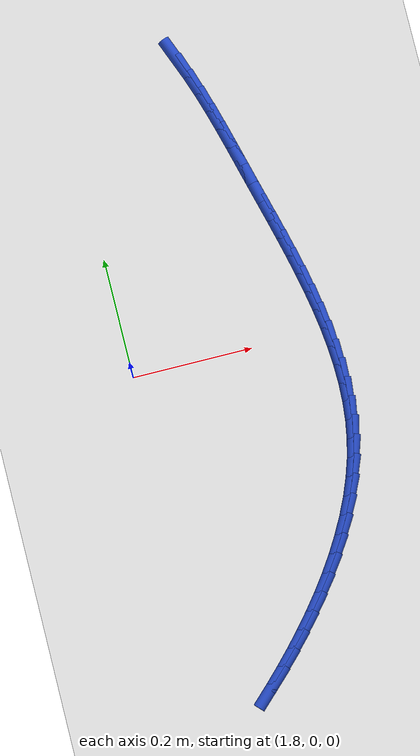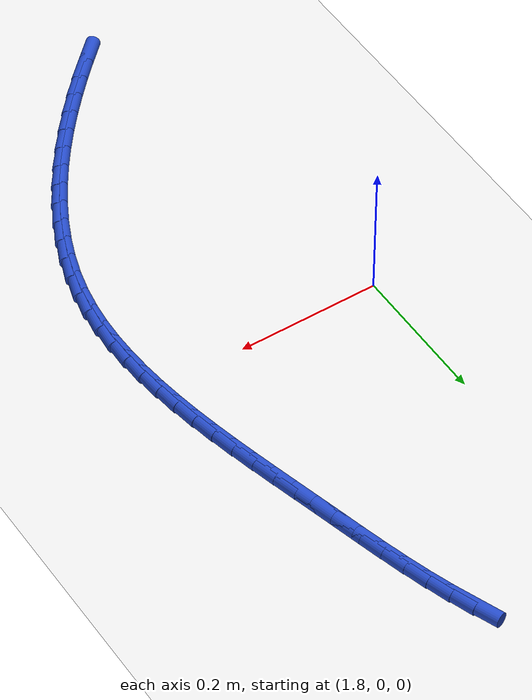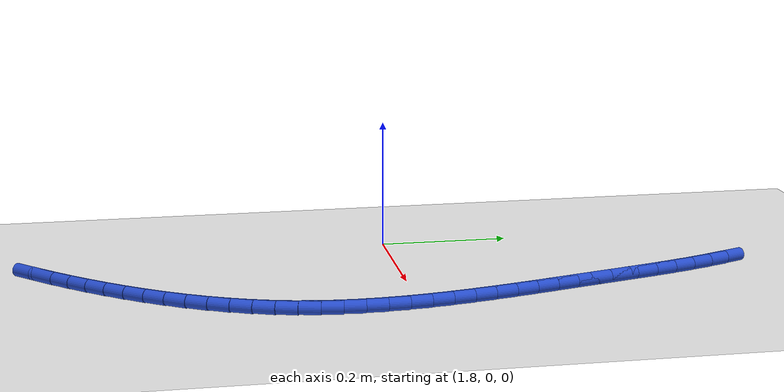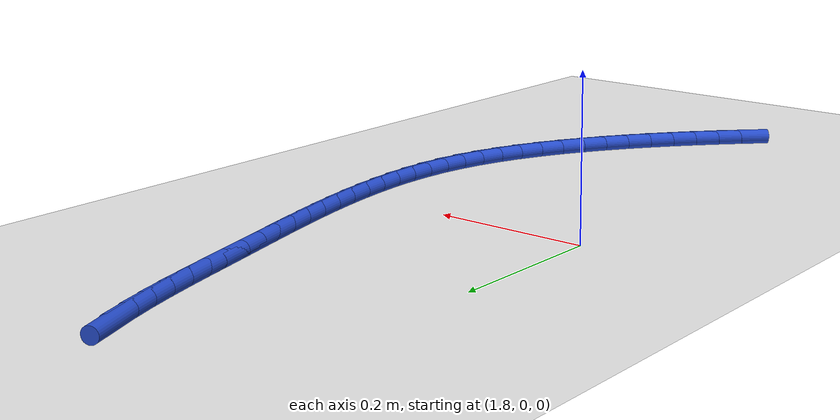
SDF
<sdf version="1.6">
 <world name="default">
  <model name="ground_plane">
   <static>1</static>
   <link name="link">
    <collision name="collision">
     <geometry><plane><normal>0 0 1</normal><size>100 100</size></plane></geometry>
     <surface><friction><ode><mu>100</mu><mu2>50</mu2></ode></friction></surface>
    </collision>
    <visual name="visual">
     <cast_shadows>0</cast_shadows>
     <geometry><plane><normal>0 0 1</normal><size>100 100</size></plane></geometry>
     <material>
      <script><uri>file://media/materials/scripts/gazebo.material</uri><name>Gazebo/WhiteGlow</name></script>
     </material>
    </visual>
   </link>
  </model>
  <model name="line">
   <link name="link_87">
    <pose>1.9966402707953828 0.4942645451980342 0.01 0 1.57 -1.1951826730131134</pose>
    <collision name="collision">
     <geometry><cylinder><radius>0.01</radius><length>0.08</length></cylinder></geometry>
    </collision>
    <visual name="visual">
     <material>
      <script><name>Gazebo/Blue</name><uri>file://media/materials/scripts/gazebo.material</uri></script>
     </material>
     <geometry><cylinder><radius>0.01</radius><length>0.08</length></cylinder></geometry>
    </visual>
   </link>
   <link name="link_88">
    <pose>2.0086938656534725 0.4636976918020511 0.01 0 1.57 -1.2339559785877878</pose>
    <collision name="collision">
     <geometry><cylinder><radius>0.01</radius><length>0.08</length></cylinder></geometry>
    </collision>
    <visual name="visual">
     <material>
      <script><name>Gazebo/Blue</name><uri>file://media/materials/scripts/gazebo.material</uri></script>
     </material>
     <geometry><cylinder><radius>0.01</radius><length>0.08</length></cylinder></geometry>
    </visual>
   </link>
   <link name="link_89">
    <pose>2.0196806717491325 0.432323473982702 0.01 0 1.57 -1.2646611327025226</pose>
    <collision name="collision">
     <geometry><cylinder><radius>0.01</radius><length>0.08</length></cylinder></geometry>
    </collision>
    <visual name="visual">
     <material>
      <script><name>Gazebo/Blue</name><uri>file://media/materials/scripts/gazebo.material</uri></script>
     </material>
     <geometry><cylinder><radius>0.01</radius><length>0.08</length></cylinder></geometry>
    </visual>
   </link>
   <link name="link_90">
    <pose>2.02980808795135 0.40028192631894227 0.01 0 1.57 -1.2876764033130716</pose>
    <collision name="collision">
     <geometry><cylinder><radius>0.01</radius><length>0.08</length></cylinder></geometry>
    </collision>
    <visual name="visual">
     <material>
      <script><name>Gazebo/Blue</name><uri>file://media/materials/scripts/gazebo.material</uri></script>
     </material>
     <geometry><cylinder><radius>0.01</radius><length>0.08</length></cylinder></geometry>
    </visual>
   </link>
   <link name="link_91">
    <pose>2.0392835131291114 0.36771308338972736 0.01 0 1.57 -1.3033357547484918</pose>
    <collision name="collision">
     <geometry><cylinder><radius>0.01</radius><length>0.08</length></cylinder></geometry>
    </collision>
    <visual name="visual">
     <material>
      <script><name>Gazebo/Blue</name><uri>file://media/materials/scripts/gazebo.material</uri></script>
     </material>
     <geometry><cylinder><radius>0.01</radius><length>0.08</length></cylinder></geometry>
    </visual>
   </link>
   <link name="link_92">
    <pose>2.0483143461514035 0.3347569797740123 0.01 0 1.57 -1.311898136501108</pose>
    <collision name="collision">
     <geometry><cylinder><radius>0.01</radius><length>0.08</length></cylinder></geometry>
    </collision>
    <visual name="visual">
     <material>
      <script><name>Gazebo/Blue</name><uri>file://media/materials/scripts/gazebo.material</uri></script>
     </material>
     <geometry><cylinder><radius>0.01</radius><length>0.08</length></cylinder></geometry>
    </visual>
   </link>
   <link name="link_93">
    <pose>2.0571079858872143 0.30155365005075374 0.01 0 1.57 -1.3135318711013881</pose>
    <collision name="collision">
     <geometry><cylinder><radius>0.01</radius><length>0.08</length></cylinder></geometry>
    </collision>
    <visual name="visual">
     <material>
      <script><name>Gazebo/Blue</name><uri>file://media/materials/scripts/gazebo.material</uri></script>
     </material>
     <geometry><cylinder><radius>0.01</radius><length>0.08</length></cylinder></geometry>
    </visual>
   </link>
   <link name="link_94">
    <pose>2.0658718040887782 0.2682431205071831 0.01 0 1.57 -1.3107129124620442</pose>
    <collision name="collision">
     <geometry><cylinder><radius>0.01</radius><length>0.08</length></cylinder></geometry>
    </collision>
    <visual name="visual">
     <material>
      <script><name>Gazebo/Blue</name><uri>file://media/materials/scripts/gazebo.material</uri></script>
     </material>
     <geometry><cylinder><radius>0.01</radius><length>0.08</length></cylinder></geometry>
    </visual>
   </link>
   <link name="link_95">
    <pose>2.0747338193554885 0.23494115293115522 0.01 0 1.57 -1.3111346978179512</pose>
    <collision name="collision">
     <geometry><cylinder><radius>0.01</radius><length>0.08</length></cylinder></geometry>
    </collision>
    <visual name="visual">
     <material>
      <script><name>Gazebo/Blue</name><uri>file://media/materials/scripts/gazebo.material</uri></script>
     </material>
     <geometry><cylinder><radius>0.01</radius><length>0.08</length></cylinder></geometry>
    </visual>
   </link>
   <link name="link_96">
    <pose>2.083568374416682 0.20168594044727262 0.01 0 1.57 -1.316355917496878</pose>
    <collision name="collision">
     <geometry><cylinder><radius>0.01</radius><length>0.08</length></cylinder></geometry>
    </collision>
    <visual name="visual">
     <material>
      <script><name>Gazebo/Blue</name><uri>file://media/materials/scripts/gazebo.material</uri></script>
     </material>
     <geometry><cylinder><radius>0.01</radius><length>0.08</length></cylinder></geometry>
    </visual>
   </link>
   <link name="link_97">
    <pose>2.092199228043658 0.16850020868610133 0.01 0 1.57 -1.326456821224471</pose>
    <collision name="collision">
     <geometry><cylinder><radius>0.01</radius><length>0.08</length></cylinder></geometry>
    </collision>
    <visual name="visual">
     <material>
      <script><name>Gazebo/Blue</name><uri>file://media/materials/scripts/gazebo.material</uri></script>
     </material>
     <geometry><cylinder><radius>0.01</radius><length>0.08</length></cylinder></geometry>
    </visual>
   </link>
   <link name="link_98">
    <pose>2.1004501390077155 0.13540668327820746 0.01 0 1.57 -1.3415723897104859</pose>
    <collision name="collision">
     <geometry><cylinder><radius>0.01</radius><length>0.08</length></cylinder></geometry>
    </collision>
    <visual name="visual">
     <material>
      <script><name>Gazebo/Blue</name><uri>file://media/materials/scripts/gazebo.material</uri></script>
     </material>
     <geometry><cylinder><radius>0.01</radius><length>0.08</length></cylinder></geometry>
    </visual>
   </link>
   <link name="link_99">
    <pose>2.108144866080155 0.10242808985415798 0.01 0 1.57 -1.3618886932570822</pose>
    <collision name="collision">
     <geometry><cylinder><radius>0.01</radius><length>0.08</length></cylinder></geometry>
    </collision>
    <visual name="visual">
     <material>
      <script><name>Gazebo/Blue</name><uri>file://media/materials/scripts/gazebo.material</uri></script>
     </material>
     <geometry><cylinder><radius>0.01</radius><length>0.08</length></cylinder></geometry>
    </visual>
   </link>
   <link name="link_100">
    <pose>2.115107168032274 0.06958715404451901 0.01 0 1.57 -1.387635765595845</pose>
    <collision name="collision">
     <geometry><cylinder><radius>0.01</radius><length>0.08</length></cylinder></geometry>
    </collision>
    <visual name="visual">
     <material>
      <script><name>Gazebo/Blue</name><uri>file://media/materials/scripts/gazebo.material</uri></script>
     </material>
     <geometry><cylinder><radius>0.01</radius><length>0.08</length></cylinder></geometry>
    </visual>
   </link>
   <link name="link_101">
    <pose>2.1211608036353735 0.03690660147985661 0.01 0 1.57 -1.4190753494903507</pose>
    <collision name="collision">
     <geometry><cylinder><radius>0.01</radius><length>0.08</length></cylinder></geometry>
    </collision>
    <visual name="visual">
     <material>
      <script><name>Gazebo/Blue</name><uri>file://media/materials/scripts/gazebo.material</uri></script>
     </material>
     <geometry><cylinder><radius>0.01</radius><length>0.08</length></cylinder></geometry>
    </visual>
   </link>
   <link name="link_102">
    <pose>2.1261295316607525 0.004409157790737927 0.01 0 1.57 -1.456481335620069</pose>
    <collision name="collision">
     <geometry><cylinder><radius>0.01</radius><length>0.08</length></cylinder></geometry>
    </collision>
    <visual name="visual">
     <material>
      <script><name>Gazebo/Blue</name><uri>file://media/materials/scripts/gazebo.material</uri></script>
     </material>
     <geometry><cylinder><radius>0.01</radius><length>0.08</length></cylinder></geometry>
    </visual>
   </link>
   <link name="link_103">
    <pose>2.1298371108797096 -0.02788245139227104 0.01 0 1.57 -1.5001103817904595</pose>
    <collision name="collision">
     <geometry><cylinder><radius>0.01</radius><length>0.08</length></cylinder></geometry>
    </collision>
    <visual name="visual">
     <material>
      <script><name>Gazebo/Blue</name><uri>file://media/materials/scripts/gazebo.material</uri></script>
     </material>
     <geometry><cylinder><radius>0.01</radius><length>0.08</length></cylinder></geometry>
    </visual>
   </link>
   <link name="link_104">
    <pose>2.132107300063546 -0.05994550043860391 0.01 0 1.57 -1.5501604156315285</pose>
    <collision name="collision">
     <geometry><cylinder><radius>0.01</radius><length>0.08</length></cylinder></geometry>
    </collision>
    <visual name="visual">
     <material>
      <script><name>Gazebo/Blue</name><uri>file://media/materials/scripts/gazebo.material</uri></script>
     </material>
     <geometry><cylinder><radius>0.01</radius><length>0.08</length></cylinder></geometry>
    </visual>
   </link>
   <link name="link_105">
    <pose>2.132763857983559 -0.0917572637176942 0.01 0 1.57 1.5348766098735038</pose>
    <collision name="collision">
     <geometry><cylinder><radius>0.01</radius><length>0.08</length></cylinder></geometry>
    </collision>
    <visual name="visual">
     <material>
      <script><name>Gazebo/Blue</name><uri>file://media/materials/scripts/gazebo.material</uri></script>
     </material>
     <geometry><cylinder><radius>0.01</radius><length>0.08</length></cylinder></geometry>
    </visual>
   </link>
   <link name="link_106">
    <pose>2.13163054341105 -0.12329501559897629 0.01 0 1.57 1.4719096850045177</pose>
    <collision name="collision">
     <geometry><cylinder><radius>0.01</radius><length>0.08</length></cylinder></geometry>
    </collision>
    <visual name="visual">
     <material>
      <script><name>Gazebo/Blue</name><uri>file://media/materials/scripts/gazebo.material</uri></script>
     </material>
     <geometry><cylinder><radius>0.01</radius><length>0.08</length></cylinder></geometry>
    </visual>
   </link>
   <link name="link_107">
    <pose>2.1285311151173163 -0.15453603045188236 0.01 0 1.57 1.402873927779133</pose>
    <collision name="collision">
     <geometry><cylinder><radius>0.01</radius><length>0.08</length></cylinder></geometry>
    </collision>
    <visual name="visual">
     <material>
      <script><name>Gazebo/Blue</name><uri>file://media/materials/scripts/gazebo.material</uri></script>
     </material>
     <geometry><cylinder><radius>0.01</radius><length>0.08</length></cylinder></geometry>
    </visual>
   </link>
   <link name="link_108">
    <pose>2.1232893318736585 -0.1854575826458466 0.01 0 1.57 1.3291554472602143</pose>
    <collision name="collision">
     <geometry><cylinder><radius>0.01</radius><length>0.08</length></cylinder></geometry>
    </collision>
    <visual name="visual">
     <material>
      <script><name>Gazebo/Blue</name><uri>file://media/materials/scripts/gazebo.material</uri></script>
     </material>
     <geometry><cylinder><radius>0.01</radius><length>0.08</length></cylinder></geometry>
    </visual>
   </link>
   <link name="link_109">
    <pose>2.115753061996013 -0.2160360757744518 0.01 0 1.57 1.257839679946424</pose>
    <collision name="collision">
     <geometry><cylinder><radius>0.01</radius><length>0.08</length></cylinder></geometry>
    </collision>
    <visual name="visual">
     <material>
      <script><name>Gazebo/Blue</name><uri>file://media/materials/scripts/gazebo.material</uri></script>
     </material>
     <geometry><cylinder><radius>0.01</radius><length>0.08</length></cylinder></geometry>
    </visual>
   </link>
   <link name="link_110">
    <pose>2.105979237724318 -0.246240362570447 0.01 0 1.57 1.1923428005922345</pose>
    <collision name="collision">
     <geometry><cylinder><radius>0.01</radius><length>0.08</length></cylinder></geometry>
    </collision>
    <visual name="visual">
     <material>
      <script><name>Gazebo/Blue</name><uri>file://media/materials/scripts/gazebo.material</uri></script>
     </material>
     <geometry><cylinder><radius>0.01</radius><length>0.08</length></cylinder></geometry>
    </visual>
   </link>
   <link name="link_111">
    <pose>2.0941321079142226 -0.2760354197615066 0.01 0 1.57 1.1325398069993644</pose>
    <collision name="collision">
     <geometry><cylinder><radius>0.01</radius><length>0.08</length></cylinder></geometry>
    </collision>
    <visual name="visual">
     <material>
      <script><name>Gazebo/Blue</name><uri>file://media/materials/scripts/gazebo.material</uri></script>
     </material>
     <geometry><cylinder><radius>0.01</radius><length>0.08</length></cylinder></geometry>
    </visual>
   </link>
   <link name="link_112">
    <pose>2.080376798562278 -0.3053861923951917 0.01 0 1.57 1.0781391492988808</pose>
    <collision name="collision">
     <geometry><cylinder><radius>0.01</radius><length>0.08</length></cylinder></geometry>
    </collision>
    <visual name="visual">
     <material>
      <script><name>Gazebo/Blue</name><uri>file://media/materials/scripts/gazebo.material</uri></script>
     </material>
     <geometry><cylinder><radius>0.01</radius><length>0.08</length></cylinder></geometry>
    </visual>
   </link>
   <link name="link_113">
    <pose>2.0648784356650385 -0.33425762551906174 0.01 0 1.57 1.0287689852604553</pose>
    <collision name="collision">
     <geometry><cylinder><radius>0.01</radius><length>0.08</length></cylinder></geometry>
    </collision>
    <visual name="visual">
     <material>
      <script><name>Gazebo/Blue</name><uri>file://media/materials/scripts/gazebo.material</uri></script>
     </material>
     <geometry><cylinder><radius>0.01</radius><length>0.08</length></cylinder></geometry>
    </visual>
   </link>
   <link name="link_114">
    <pose>2.047802145219056 -0.3626146641806779 0.01 0 1.57 0.9840221389931908</pose>
    <collision name="collision">
     <geometry><cylinder><radius>0.01</radius><length>0.08</length></cylinder></geometry>
    </collision>
    <visual name="visual">
     <material>
      <script><name>Gazebo/Blue</name><uri>file://media/materials/scripts/gazebo.material</uri></script>
     </material>
     <geometry><cylinder><radius>0.01</radius><length>0.08</length></cylinder></geometry>
    </visual>
   </link>
   <link name="link_115">
    <pose>2.0293130532208825 -0.39042225342760073 0.01 0 1.57 0.9434873877266862</pose>
    <collision name="collision">
     <geometry><cylinder><radius>0.01</radius><length>0.08</length></cylinder></geometry>
    </collision>
    <visual name="visual">
     <material>
      <script><name>Gazebo/Blue</name><uri>file://media/materials/scripts/gazebo.material</uri></script>
     </material>
     <geometry><cylinder><radius>0.01</radius><length>0.08</length></cylinder></geometry>
    </visual>
   </link>
   <link name="link_116">
    <pose>2.0095762856670705 -0.41764533830739087 0.01 0 1.57 0.9067695902076954</pose>
    <collision name="collision">
     <geometry><cylinder><radius>0.01</radius><length>0.08</length></cylinder></geometry>
    </collision>
    <visual name="visual">
     <material>
      <script><name>Gazebo/Blue</name><uri>file://media/materials/scripts/gazebo.material</uri></script>
     </material>
     <geometry><cylinder><radius>0.01</radius><length>0.08</length></cylinder></geometry>
    </visual>
   </link>
   <link name="link_117">
    <pose>1.9887569685541726 -0.44424886386760887 0.01 0 1.57 0.8735015282773314</pose>
    <collision name="collision">
     <geometry><cylinder><radius>0.01</radius><length>0.08</length></cylinder></geometry>
    </collision>
    <visual name="visual">
     <material>
      <script><name>Gazebo/Blue</name><uri>file://media/materials/scripts/gazebo.material</uri></script>
     </material>
     <geometry><cylinder><radius>0.01</radius><length>0.08</length></cylinder></geometry>
    </visual>
   </link>
   <link name="link_118">
    <pose>1.9670202278787419 -0.4701977751558156 0.01 0 1.57 0.8433500297659888</pose>
    <collision name="collision">
     <geometry><cylinder><radius>0.01</radius><length>0.08</length></cylinder></geometry>
    </collision>
    <visual name="visual">
     <material>
      <script><name>Gazebo/Blue</name><uri>file://media/materials/scripts/gazebo.material</uri></script>
     </material>
     <geometry><cylinder><radius>0.01</radius><length>0.08</length></cylinder></geometry>
    </visual>
   </link>
   <link name="link_119">
    <pose>1.9445311896373287 -0.4954570172195718 0.01 0 1.57 0.8160184111515493</pose>
    <collision name="collision">
     <geometry><cylinder><radius>0.01</radius><length>0.08</length></cylinder></geometry>
    </collision>
    <visual name="visual">
     <material>
      <script><name>Gazebo/Blue</name><uri>file://media/materials/scripts/gazebo.material</uri></script>
     </material>
     <geometry><cylinder><radius>0.01</radius><length>0.08</length></cylinder></geometry>
    </visual>
   </link>
   <link name="link_120">
    <pose>1.9214549798264877 -0.519991535106437 0.01 0 1.57 0.7912503320444341</pose>
    <collision name="collision">
     <geometry><cylinder><radius>0.01</radius><length>0.08</length></cylinder></geometry>
    </collision>
    <visual name="visual">
     <material>
      <script><name>Gazebo/Blue</name><uri>file://media/materials/scripts/gazebo.material</uri></script>
     </material>
     <geometry><cylinder><radius>0.01</radius><length>0.08</length></cylinder></geometry>
    </visual>
   </link>
   <link name="link_121">
    <pose>1.8979566454260342 -0.5437665241263351 0.01 0 1.57 0.7697318069895329</pose>
    <collision name="collision">
     <geometry><cylinder><radius>0.01</radius><length>0.08</length></cylinder></geometry>
    </collision>
    <visual name="visual">
     <material>
      <script><name>Gazebo/Blue</name><uri>file://media/materials/scripts/gazebo.material</uri></script>
     </material>
     <geometry><cylinder><radius>0.01</radius><length>0.08</length></cylinder></geometry>
    </visual>
   </link>
  </model>
 </world>
</sdf>
